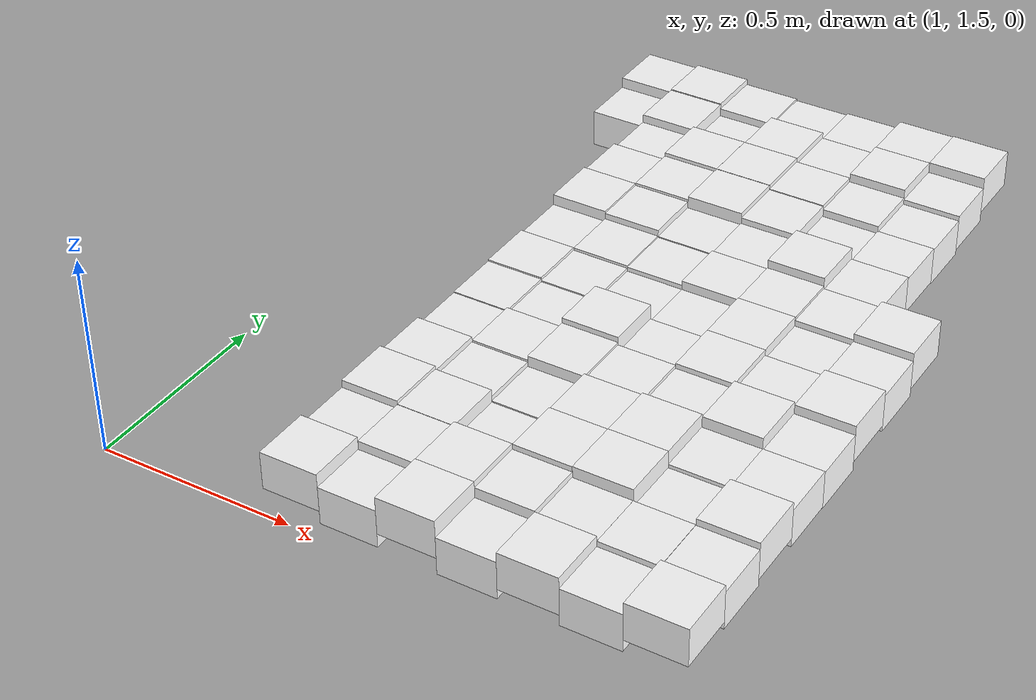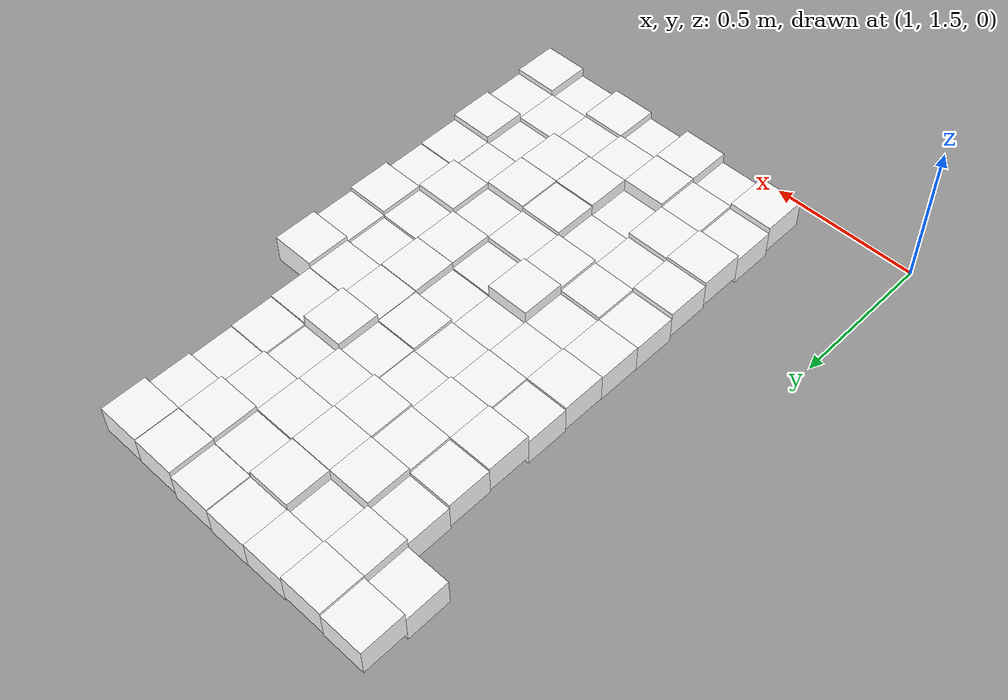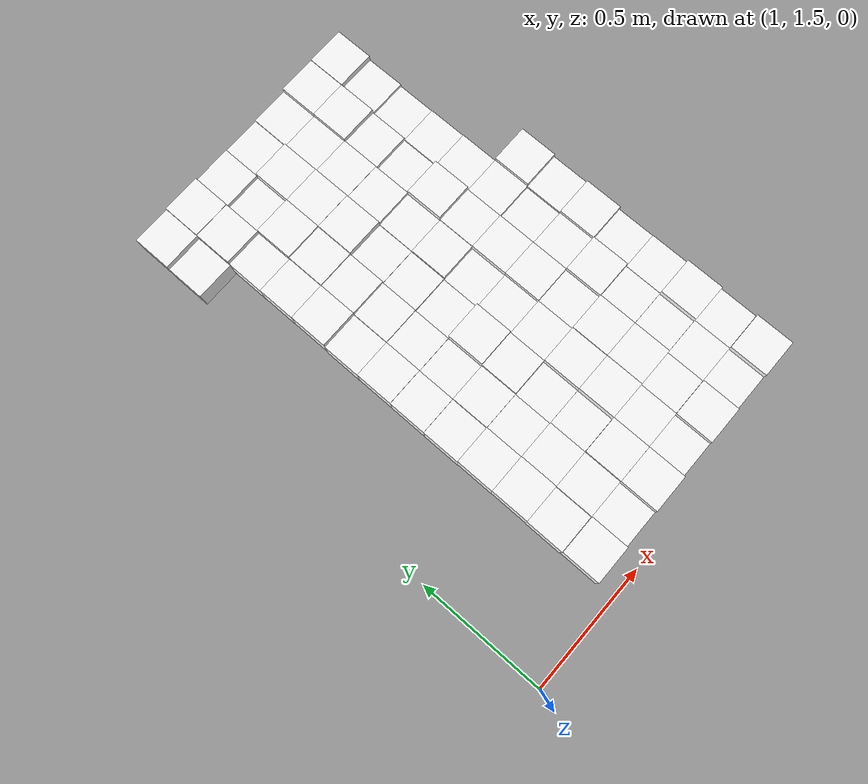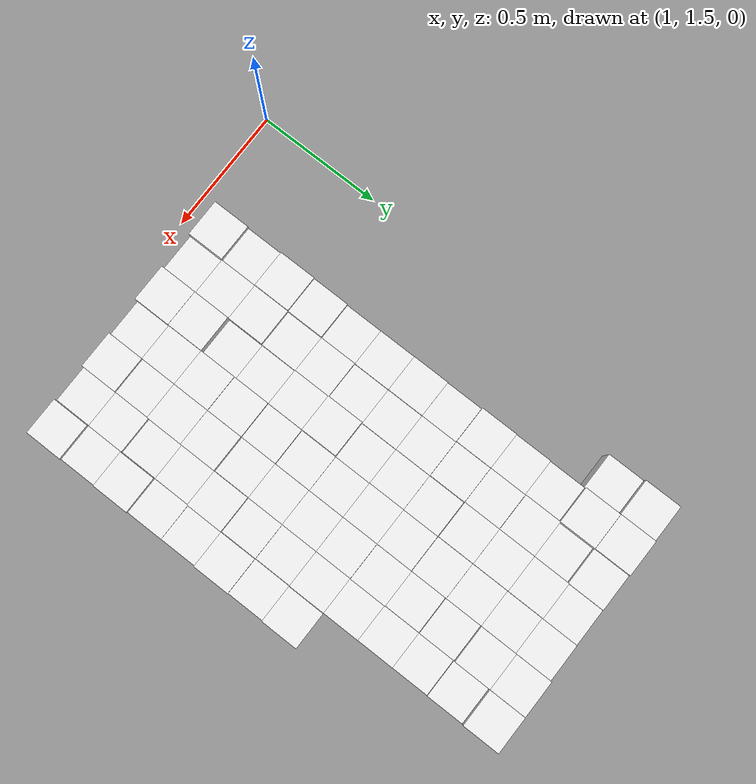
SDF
<sdf version="1.7">
 <world name="default">
  <include><uri>model://sun</uri></include>
  <model name="static_environment">
   <static>true</static>
   <link name="region_473">
    <pose>1.4499999999999997 1.65 0.04442237636148465 0.0 0.0 0.0</pose>
    <collision name="region_473_collision">
     <geometry><box><size>0.15 0.15 0.1</size></box></geometry>
     <surface><friction><ode><mu>1.0</mu><mu2>1.0</mu2></ode></friction></surface>
    </collision>
    <visual name="region_473_visual">
     <geometry><box><size>0.15 0.15 0.1</size></box></geometry>
     <material><ambient>1.0 1.0 1.0 1.0</ambient><diffuse>1.0 1.0 1.0 1.0</diffuse></material>
    </visual>
   </link>
   <link name="region_474">
    <pose>1.5999999999999996 1.65 0.010425024423009006 0.0 0.0 0.0</pose>
    <collision name="region_474_collision">
     <geometry><box><size>0.15 0.15 0.1</size></box></geometry>
     <surface><friction><ode><mu>1.0</mu><mu2>1.0</mu2></ode></friction></surface>
    </collision>
    <visual name="region_474_visual">
     <geometry><box><size>0.15 0.15 0.1</size></box></geometry>
     <material><ambient>1.0 1.0 1.0 1.0</ambient><diffuse>1.0 1.0 1.0 1.0</diffuse></material>
    </visual>
   </link>
   <link name="region_475">
    <pose>1.7499999999999996 1.65 0.047229073107816245 0.0 0.0 0.0</pose>
    <collision name="region_475_collision">
     <geometry><box><size>0.15 0.15 0.1</size></box></geometry>
     <surface><friction><ode><mu>1.0</mu><mu2>1.0</mu2></ode></friction></surface>
    </collision>
    <visual name="region_475_visual">
     <geometry><box><size>0.15 0.15 0.1</size></box></geometry>
     <material><ambient>1.0 1.0 1.0 1.0</ambient><diffuse>1.0 1.0 1.0 1.0</diffuse></material>
    </visual>
   </link>
   <link name="region_476">
    <pose>1.8999999999999995 1.65 0.0036735021971132766 0.0 0.0 0.0</pose>
    <collision name="region_476_collision">
     <geometry><box><size>0.15 0.15 0.1</size></box></geometry>
     <surface><friction><ode><mu>1.0</mu><mu2>1.0</mu2></ode></friction></surface>
    </collision>
    <visual name="region_476_visual">
     <geometry><box><size>0.15 0.15 0.1</size></box></geometry>
     <material><ambient>1.0 1.0 1.0 1.0</ambient><diffuse>1.0 1.0 1.0 1.0</diffuse></material>
    </visual>
   </link>
   <link name="region_477">
    <pose>2.05 1.65 0.029757622831804525 0.0 0.0 0.0</pose>
    <collision name="region_477_collision">
     <geometry><box><size>0.15 0.15 0.1</size></box></geometry>
     <surface><friction><ode><mu>1.0</mu><mu2>1.0</mu2></ode></friction></surface>
    </collision>
    <visual name="region_477_visual">
     <geometry><box><size>0.15 0.15 0.1</size></box></geometry>
     <material><ambient>1.0 1.0 1.0 1.0</ambient><diffuse>1.0 1.0 1.0 1.0</diffuse></material>
    </visual>
   </link>
   <link name="region_478">
    <pose>2.2 1.65 0.0015575535425883193 0.0 0.0 0.0</pose>
    <collision name="region_478_collision">
     <geometry><box><size>0.15 0.15 0.1</size></box></geometry>
     <surface><friction><ode><mu>1.0</mu><mu2>1.0</mu2></ode></friction></surface>
    </collision>
    <visual name="region_478_visual">
     <geometry><box><size>0.15 0.15 0.1</size></box></geometry>
     <material><ambient>1.0 1.0 1.0 1.0</ambient><diffuse>1.0 1.0 1.0 1.0</diffuse></material>
    </visual>
   </link>
   <link name="region_479">
    <pose>2.3500000000000005 1.65 0.03326287162653946 0.0 0.0 0.0</pose>
    <collision name="region_479_collision">
     <geometry><box><size>0.15 0.15 0.1</size></box></geometry>
     <surface><friction><ode><mu>1.0</mu><mu2>1.0</mu2></ode></friction></surface>
    </collision>
    <visual name="region_479_visual">
     <geometry><box><size>0.15 0.15 0.1</size></box></geometry>
     <material><ambient>1.0 1.0 1.0 1.0</ambient><diffuse>1.0 1.0 1.0 1.0</diffuse></material>
    </visual>
   </link>
   <link name="region_483">
    <pose>1.4499999999999997 1.7999999999999998 0.022281352670531288 0.0 0.0 0.0</pose>
    <collision name="region_483_collision">
     <geometry><box><size>0.15 0.15 0.1</size></box></geometry>
     <surface><friction><ode><mu>1.0</mu><mu2>1.0</mu2></ode></friction></surface>
    </collision>
    <visual name="region_483_visual">
     <geometry><box><size>0.15 0.15 0.1</size></box></geometry>
     <material><ambient>1.0 1.0 1.0 1.0</ambient><diffuse>1.0 1.0 1.0 1.0</diffuse></material>
    </visual>
   </link>
   <link name="region_484">
    <pose>1.5999999999999996 1.7999999999999998 0.03349788162178775 0.0 0.0 0.0</pose>
    <collision name="region_484_collision">
     <geometry><box><size>0.15 0.15 0.1</size></box></geometry>
     <surface><friction><ode><mu>1.0</mu><mu2>1.0</mu2></ode></friction></surface>
    </collision>
    <visual name="region_484_visual">
     <geometry><box><size>0.15 0.15 0.1</size></box></geometry>
     <material><ambient>1.0 1.0 1.0 1.0</ambient><diffuse>1.0 1.0 1.0 1.0</diffuse></material>
    </visual>
   </link>
   <link name="region_485">
    <pose>1.7499999999999996 1.7999999999999998 0.04621653498159958 0.0 0.0 0.0</pose>
    <collision name="region_485_collision">
     <geometry><box><size>0.15 0.15 0.1</size></box></geometry>
     <surface><friction><ode><mu>1.0</mu><mu2>1.0</mu2></ode></friction></surface>
    </collision>
    <visual name="region_485_visual">
     <geometry><box><size>0.15 0.15 0.1</size></box></geometry>
     <material><ambient>1.0 1.0 1.0 1.0</ambient><diffuse>1.0 1.0 1.0 1.0</diffuse></material>
    </visual>
   </link>
   <link name="region_486">
    <pose>1.8999999999999995 1.7999999999999998 0.030971173338387333 0.0 0.0 0.0</pose>
    <collision name="region_486_collision">
     <geometry><box><size>0.15 0.15 0.1</size></box></geometry>
     <surface><friction><ode><mu>1.0</mu><mu2>1.0</mu2></ode></friction></surface>
    </collision>
    <visual name="region_486_visual">
     <geometry><box><size>0.15 0.15 0.1</size></box></geometry>
     <material><ambient>1.0 1.0 1.0 1.0</ambient><diffuse>1.0 1.0 1.0 1.0</diffuse></material>
    </visual>
   </link>
   <link name="region_487">
    <pose>2.05 1.7999999999999998 0.016129286635440693 0.0 0.0 0.0</pose>
    <collision name="region_487_collision">
     <geometry><box><size>0.15 0.15 0.1</size></box></geometry>
     <surface><friction><ode><mu>1.0</mu><mu2>1.0</mu2></ode></friction></surface>
    </collision>
    <visual name="region_487_visual">
     <geometry><box><size>0.15 0.15 0.1</size></box></geometry>
     <material><ambient>1.0 1.0 1.0 1.0</ambient><diffuse>1.0 1.0 1.0 1.0</diffuse></material>
    </visual>
   </link>
   <link name="region_488">
    <pose>2.2 1.7999999999999998 0.015973815546679062 0.0 0.0 0.0</pose>
    <collision name="region_488_collision">
     <geometry><box><size>0.15 0.15 0.1</size></box></geometry>
     <surface><friction><ode><mu>1.0</mu><mu2>1.0</mu2></ode></friction></surface>
    </collision>
    <visual name="region_488_visual">
     <geometry><box><size>0.15 0.15 0.1</size></box></geometry>
     <material><ambient>1.0 1.0 1.0 1.0</ambient><diffuse>1.0 1.0 1.0 1.0</diffuse></material>
    </visual>
   </link>
   <link name="region_489">
    <pose>2.3500000000000005 1.7999999999999998 0.014572834250332645 0.0 0.0 0.0</pose>
    <collision name="region_489_collision">
     <geometry><box><size>0.15 0.15 0.1</size></box></geometry>
     <surface><friction><ode><mu>1.0</mu><mu2>1.0</mu2></ode></friction></surface>
    </collision>
    <visual name="region_489_visual">
     <geometry><box><size>0.15 0.15 0.1</size></box></geometry>
     <material><ambient>1.0 1.0 1.0 1.0</ambient><diffuse>1.0 1.0 1.0 1.0</diffuse></material>
    </visual>
   </link>
   <link name="region_493">
    <pose>1.4499999999999997 1.9499999999999997 0.042859527941597184 0.0 0.0 0.0</pose>
    <collision name="region_493_collision">
     <geometry><box><size>0.15 0.15 0.1</size></box></geometry>
     <surface><friction><ode><mu>1.0</mu><mu2>1.0</mu2></ode></friction></surface>
    </collision>
    <visual name="region_493_visual">
     <geometry><box><size>0.15 0.15 0.1</size></box></geometry>
     <material><ambient>1.0 1.0 1.0 1.0</ambient><diffuse>1.0 1.0 1.0 1.0</diffuse></material>
    </visual>
   </link>
   <link name="region_494">
    <pose>1.5999999999999996 1.9499999999999997 0.034446383301622883 0.0 0.0 0.0</pose>
    <collision name="region_494_collision">
     <geometry><box><size>0.15 0.15 0.1</size></box></geometry>
     <surface><friction><ode><mu>1.0</mu><mu2>1.0</mu2></ode></friction></surface>
    </collision>
    <visual name="region_494_visual">
     <geometry><box><size>0.15 0.15 0.1</size></box></geometry>
     <material><ambient>1.0 1.0 1.0 1.0</ambient><diffuse>1.0 1.0 1.0 1.0</diffuse></material>
    </visual>
   </link>
   <link name="region_495">
    <pose>1.7499999999999996 1.9499999999999997 0.00016439843761698048 0.0 0.0 0.0</pose>
    <collision name="region_495_collision">
     <geometry><box><size>0.15 0.15 0.1</size></box></geometry>
     <surface><friction><ode><mu>1.0</mu><mu2>1.0</mu2></ode></friction></surface>
    </collision>
    <visual name="region_495_visual">
     <geometry><box><size>0.15 0.15 0.1</size></box></geometry>
     <material><ambient>1.0 1.0 1.0 1.0</ambient><diffuse>1.0 1.0 1.0 1.0</diffuse></material>
    </visual>
   </link>
   <link name="region_496">
    <pose>1.8999999999999995 1.9499999999999997 0.045005174982849123 0.0 0.0 0.0</pose>
    <collision name="region_496_collision">
     <geometry><box><size>0.15 0.15 0.1</size></box></geometry>
     <surface><friction><ode><mu>1.0</mu><mu2>1.0</mu2></ode></friction></surface>
    </collision>
    <visual name="region_496_visual">
     <geometry><box><size>0.15 0.15 0.1</size></box></geometry>
     <material><ambient>1.0 1.0 1.0 1.0</ambient><diffuse>1.0 1.0 1.0 1.0</diffuse></material>
    </visual>
   </link>
   <link name="region_497">
    <pose>2.05 1.9499999999999997 0.045993243548116174 0.0 0.0 0.0</pose>
    <collision name="region_497_collision">
     <geometry><box><size>0.15 0.15 0.1</size></box></geometry>
     <surface><friction><ode><mu>1.0</mu><mu2>1.0</mu2></ode></friction></surface>
    </collision>
    <visual name="region_497_visual">
     <geometry><box><size>0.15 0.15 0.1</size></box></geometry>
     <material><ambient>1.0 1.0 1.0 1.0</ambient><diffuse>1.0 1.0 1.0 1.0</diffuse></material>
    </visual>
   </link>
   <link name="region_498">
    <pose>2.2 1.9499999999999997 0.0002954677934242145 0.0 0.0 0.0</pose>
    <collision name="region_498_collision">
     <geometry><box><size>0.15 0.15 0.1</size></box></geometry>
     <surface><friction><ode><mu>1.0</mu><mu2>1.0</mu2></ode></friction></surface>
    </collision>
    <visual name="region_498_visual">
     <geometry><box><size>0.15 0.15 0.1</size></box></geometry>
     <material><ambient>1.0 1.0 1.0 1.0</ambient><diffuse>1.0 1.0 1.0 1.0</diffuse></material>
    </visual>
   </link>
   <link name="region_499">
    <pose>2.3500000000000005 1.9499999999999997 0.03214630742179228 0.0 0.0 0.0</pose>
    <collision name="region_499_collision">
     <geometry><box><size>0.15 0.15 0.1</size></box></geometry>
     <surface><friction><ode><mu>1.0</mu><mu2>1.0</mu2></ode></friction></surface>
    </collision>
    <visual name="region_499_visual">
     <geometry><box><size>0.15 0.15 0.1</size></box></geometry>
     <material><ambient>1.0 1.0 1.0 1.0</ambient><diffuse>1.0 1.0 1.0 1.0</diffuse></material>
    </visual>
   </link>
   <link name="region_503">
    <pose>1.4499999999999997 2.0999999999999996 0.02998095941986689 0.0 0.0 0.0</pose>
    <collision name="region_503_collision">
     <geometry><box><size>0.15 0.15 0.1</size></box></geometry>
     <surface><friction><ode><mu>1.0</mu><mu2>1.0</mu2></ode></friction></surface>
    </collision>
    <visual name="region_503_visual">
     <geometry><box><size>0.15 0.15 0.1</size></box></geometry>
     <material><ambient>1.0 1.0 1.0 1.0</ambient><diffuse>1.0 1.0 1.0 1.0</diffuse></material>
    </visual>
   </link>
   <link name="region_504">
    <pose>1.5999999999999996 2.0999999999999996 0.01561419984216258 0.0 0.0 0.0</pose>
    <collision name="region_504_collision">
     <geometry><box><size>0.15 0.15 0.1</size></box></geometry>
     <surface><friction><ode><mu>1.0</mu><mu2>1.0</mu2></ode></friction></surface>
    </collision>
    <visual name="region_504_visual">
     <geometry><box><size>0.15 0.15 0.1</size></box></geometry>
     <material><ambient>1.0 1.0 1.0 1.0</ambient><diffuse>1.0 1.0 1.0 1.0</diffuse></material>
    </visual>
   </link>
   <link name="region_505">
    <pose>1.7499999999999996 2.0999999999999996 0.003493683738154402 0.0 0.0 0.0</pose>
    <collision name="region_505_collision">
     <geometry><box><size>0.15 0.15 0.1</size></box></geometry>
     <surface><friction><ode><mu>1.0</mu><mu2>1.0</mu2></ode></friction></surface>
    </collision>
    <visual name="region_505_visual">
     <geometry><box><size>0.15 0.15 0.1</size></box></geometry>
     <material><ambient>1.0 1.0 1.0 1.0</ambient><diffuse>1.0 1.0 1.0 1.0</diffuse></material>
    </visual>
   </link>
   <link name="region_506">
    <pose>1.8999999999999995 2.0999999999999996 0.04003671171077638 0.0 0.0 0.0</pose>
    <collision name="region_506_collision">
     <geometry><box><size>0.15 0.15 0.1</size></box></geometry>
     <surface><friction><ode><mu>1.0</mu><mu2>1.0</mu2></ode></friction></surface>
    </collision>
    <visual name="region_506_visual">
     <geometry><box><size>0.15 0.15 0.1</size></box></geometry>
     <material><ambient>1.0 1.0 1.0 1.0</ambient><diffuse>1.0 1.0 1.0 1.0</diffuse></material>
    </visual>
   </link>
   <link name="region_507">
    <pose>2.05 2.0999999999999996 0.04557170250666596 0.0 0.0 0.0</pose>
    <collision name="region_507_collision">
     <geometry><box><size>0.15 0.15 0.1</size></box></geometry>
     <surface><friction><ode><mu>1.0</mu><mu2>1.0</mu2></ode></friction></surface>
    </collision>
    <visual name="region_507_visual">
     <geometry><box><size>0.15 0.15 0.1</size></box></geometry>
     <material><ambient>1.0 1.0 1.0 1.0</ambient><diffuse>1.0 1.0 1.0 1.0</diffuse></material>
    </visual>
   </link>
   <link name="region_508">
    <pose>2.2 2.0999999999999996 0.009733731452126854 0.0 0.0 0.0</pose>
    <collision name="region_508_collision">
     <geometry><box><size>0.15 0.15 0.1</size></box></geometry>
     <surface><friction><ode><mu>1.0</mu><mu2>1.0</mu2></ode></friction></surface>
    </collision>
    <visual name="region_508_visual">
     <geometry><box><size>0.15 0.15 0.1</size></box></geometry>
     <material><ambient>1.0 1.0 1.0 1.0</ambient><diffuse>1.0 1.0 1.0 1.0</diffuse></material>
    </visual>
   </link>
   <link name="region_509">
    <pose>2.3500000000000005 2.0999999999999996 0.010530381942644197 0.0 0.0 0.0</pose>
    <collision name="region_509_collision">
     <geometry><box><size>0.15 0.15 0.1</size></box></geometry>
     <surface><friction><ode><mu>1.0</mu><mu2>1.0</mu2></ode></friction></surface>
    </collision>
    <visual name="region_509_visual">
     <geometry><box><size>0.15 0.15 0.1</size></box></geometry>
     <material><ambient>1.0 1.0 1.0 1.0</ambient><diffuse>1.0 1.0 1.0 1.0</diffuse></material>
    </visual>
   </link>
   <link name="region_513">
    <pose>1.4499999999999997 2.2499999999999996 0.010107717168503628 0.0 0.0 0.0</pose>
    <collision name="region_513_collision">
     <geometry><box><size>0.15 0.15 0.1</size></box></geometry>
     <surface><friction><ode><mu>1.0</mu><mu2>1.0</mu2></ode></friction></surface>
    </collision>
    <visual name="region_513_visual">
     <geometry><box><size>0.15 0.15 0.1</size></box></geometry>
     <material><ambient>1.0 1.0 1.0 1.0</ambient><diffuse>1.0 1.0 1.0 1.0</diffuse></material>
    </visual>
   </link>
   <link name="region_514">
    <pose>1.5999999999999996 2.2499999999999996 0.020950741374187527 0.0 0.0 0.0</pose>
    <collision name="region_514_collision">
     <geometry><box><size>0.15 0.15 0.1</size></box></geometry>
     <surface><friction><ode><mu>1.0</mu><mu2>1.0</mu2></ode></friction></surface>
    </collision>
    <visual name="region_514_visual">
     <geometry><box><size>0.15 0.15 0.1</size></box></geometry>
     <material><ambient>1.0 1.0 1.0 1.0</ambient><diffuse>1.0 1.0 1.0 1.0</diffuse></material>
    </visual>
   </link>
   <link name="region_515">
    <pose>1.7499999999999996 2.2499999999999996 0.032397958666963066 0.0 0.0 0.0</pose>
    <collision name="region_515_collision">
     <geometry><box><size>0.15 0.15 0.1</size></box></geometry>
     <surface><friction><ode><mu>1.0</mu><mu2>1.0</mu2></ode></friction></surface>
    </collision>
    <visual name="region_515_visual">
     <geometry><box><size>0.15 0.15 0.1</size></box></geometry>
     <material><ambient>1.0 1.0 1.0 1.0</ambient><diffuse>1.0 1.0 1.0 1.0</diffuse></material>
    </visual>
   </link>
   <link name="region_516">
    <pose>1.8999999999999995 2.2499999999999996 0.025582147639666555 0.0 0.0 0.0</pose>
    <collision name="region_516_collision">
     <geometry><box><size>0.15 0.15 0.1</size></box></geometry>
     <surface><friction><ode><mu>1.0</mu><mu2>1.0</mu2></ode></friction></surface>
    </collision>
    <visual name="region_516_visual">
     <geometry><box><size>0.15 0.15 0.1</size></box></geometry>
     <material><ambient>1.0 1.0 1.0 1.0</ambient><diffuse>1.0 1.0 1.0 1.0</diffuse></material>
    </visual>
   </link>
   <link name="region_517">
    <pose>2.05 2.2499999999999996 0.016691624275730156 0.0 0.0 0.0</pose>
    <collision name="region_517_collision">
     <geometry><box><size>0.15 0.15 0.1</size></box></geometry>
     <surface><friction><ode><mu>1.0</mu><mu2>1.0</mu2></ode></friction></surface>
    </collision>
    <visual name="region_517_visual">
     <geometry><box><size>0.15 0.15 0.1</size></box></geometry>
     <material><ambient>1.0 1.0 1.0 1.0</ambient><diffuse>1.0 1.0 1.0 1.0</diffuse></material>
    </visual>
   </link>
   <link name="region_518">
    <pose>2.2 2.2499999999999996 0.03892367169296723 0.0 0.0 0.0</pose>
    <collision name="region_518_collision">
     <geometry><box><size>0.15 0.15 0.1</size></box></geometry>
     <surface><friction><ode><mu>1.0</mu><mu2>1.0</mu2></ode></friction></surface>
    </collision>
    <visual name="region_518_visual">
     <geometry><box><size>0.15 0.15 0.1</size></box></geometry>
     <material><ambient>1.0 1.0 1.0 1.0</ambient><diffuse>1.0 1.0 1.0 1.0</diffuse></material>
    </visual>
   </link>
   <link name="region_519">
    <pose>2.3500000000000005 2.2499999999999996 0.00677175672838054 0.0 0.0 0.0</pose>
    <collision name="region_519_collision">
     <geometry><box><size>0.15 0.15 0.1</size></box></geometry>
     <surface><friction><ode><mu>1.0</mu><mu2>1.0</mu2></ode></friction></surface>
    </collision>
    <visual name="region_519_visual">
     <geometry><box><size>0.15 0.15 0.1</size></box></geometry>
     <material><ambient>1.0 1.0 1.0 1.0</ambient><diffuse>1.0 1.0 1.0 1.0</diffuse></material>
    </visual>
   </link>
   <link name="region_523">
    <pose>1.4499999999999997 2.3999999999999995 0.01269040969638447 0.0 0.0 0.0</pose>
    <collision name="region_523_collision">
     <geometry><box><size>0.15 0.15 0.1</size></box></geometry>
     <surface><friction><ode><mu>1.0</mu><mu2>1.0</mu2></ode></friction></surface>
    </collision>
    <visual name="region_523_visual">
     <geometry><box><size>0.15 0.15 0.1</size></box></geometry>
     <material><ambient>1.0 1.0 1.0 1.0</ambient><diffuse>1.0 1.0 1.0 1.0</diffuse></material>
    </visual>
   </link>
   <link name="region_524">
    <pose>1.5999999999999996 2.3999999999999995 0.005474271066575942 0.0 0.0 0.0</pose>
    <collision name="region_524_collision">
     <geometry><box><size>0.15 0.15 0.1</size></box></geometry>
     <surface><friction><ode><mu>1.0</mu><mu2>1.0</mu2></ode></friction></surface>
    </collision>
    <visual name="region_524_visual">
     <geometry><box><size>0.15 0.15 0.1</size></box></geometry>
     <material><ambient>1.0 1.0 1.0 1.0</ambient><diffuse>1.0 1.0 1.0 1.0</diffuse></material>
    </visual>
   </link>
   <link name="region_525">
    <pose>1.7499999999999996 2.3999999999999995 0.04653380071909432 0.0 0.0 0.0</pose>
    <collision name="region_525_collision">
     <geometry><box><size>0.15 0.15 0.1</size></box></geometry>
     <surface><friction><ode><mu>1.0</mu><mu2>1.0</mu2></ode></friction></surface>
    </collision>
    <visual name="region_525_visual">
     <geometry><box><size>0.15 0.15 0.1</size></box></geometry>
     <material><ambient>1.0 1.0 1.0 1.0</ambient><diffuse>1.0 1.0 1.0 1.0</diffuse></material>
    </visual>
   </link>
   <link name="region_526">
    <pose>1.8999999999999995 2.3999999999999995 0.00631936418872987 0.0 0.0 0.0</pose>
    <collision name="region_526_collision">
     <geometry><box><size>0.15 0.15 0.1</size></box></geometry>
     <surface><friction><ode><mu>1.0</mu><mu2>1.0</mu2></ode></friction></surface>
    </collision>
    <visual name="region_526_visual">
     <geometry><box><size>0.15 0.15 0.1</size></box></geometry>
     <material><ambient>1.0 1.0 1.0 1.0</ambient><diffuse>1.0 1.0 1.0 1.0</diffuse></material>
    </visual>
   </link>
   <link name="region_527">
    <pose>2.05 2.3999999999999995 0.03025026951817818 0.0 0.0 0.0</pose>
    <collision name="region_527_collision">
     <geometry><box><size>0.15 0.15 0.1</size></box></geometry>
     <surface><friction><ode><mu>1.0</mu><mu2>1.0</mu2></ode></friction></surface>
    </collision>
    <visual name="region_527_visual">
     <geometry><box><size>0.15 0.15 0.1</size></box></geometry>
     <material><ambient>1.0 1.0 1.0 1.0</ambient><diffuse>1.0 1.0 1.0 1.0</diffuse></material>
    </visual>
   </link>
   <link name="region_528">
    <pose>2.2 2.3999999999999995 0.014506096829391357 0.0 0.0 0.0</pose>
    <collision name="region_528_collision">
     <geometry><box><size>0.15 0.15 0.1</size></box></geometry>
     <surface><friction><ode><mu>1.0</mu><mu2>1.0</mu2></ode></friction></surface>
    </collision>
    <visual name="region_528_visual">
     <geometry><box><size>0.15 0.15 0.1</size></box></geometry>
     <material><ambient>1.0 1.0 1.0 1.0</ambient><diffuse>1.0 1.0 1.0 1.0</diffuse></material>
    </visual>
   </link>
   <link name="region_529">
    <pose>2.3500000000000005 2.3999999999999995 0.03132646959612852 0.0 0.0 0.0</pose>
    <collision name="region_529_collision">
     <geometry><box><size>0.15 0.15 0.1</size></box></geometry>
     <surface><friction><ode><mu>1.0</mu><mu2>1.0</mu2></ode></friction></surface>
    </collision>
    <visual name="region_529_visual">
     <geometry><box><size>0.15 0.15 0.1</size></box></geometry>
     <material><ambient>1.0 1.0 1.0 1.0</ambient><diffuse>1.0 1.0 1.0 1.0</diffuse></material>
    </visual>
   </link>
   <link name="region_533">
    <pose>1.4499999999999997 2.5499999999999994 0.016736203873838628 0.0 0.0 0.0</pose>
    <collision name="region_533_collision">
     <geometry><box><size>0.15 0.15 0.1</size></box></geometry>
     <surface><friction><ode><mu>1.0</mu><mu2>1.0</mu2></ode></friction></surface>
    </collision>
    <visual name="region_533_visual">
     <geometry><box><size>0.15 0.15 0.1</size></box></geometry>
     <material><ambient>1.0 1.0 1.0 1.0</ambient><diffuse>1.0 1.0 1.0 1.0</diffuse></material>
    </visual>
   </link>
   <link name="region_534">
    <pose>1.5999999999999996 2.5499999999999994 0.00887531836083677 0.0 0.0 0.0</pose>
    <collision name="region_534_collision">
     <geometry><box><size>0.15 0.15 0.1</size></box></geometry>
     <surface><friction><ode><mu>1.0</mu><mu2>1.0</mu2></ode></friction></surface>
    </collision>
    <visual name="region_534_visual">
     <geometry><box><size>0.15 0.15 0.1</size></box></geometry>
     <material><ambient>1.0 1.0 1.0 1.0</ambient><diffuse>1.0 1.0 1.0 1.0</diffuse></material>
    </visual>
   </link>
   <link name="region_535">
    <pose>1.7499999999999996 2.5499999999999994 0.00040016698911405913 0.0 0.0 0.0</pose>
    <collision name="region_535_collision">
     <geometry><box><size>0.15 0.15 0.1</size></box></geometry>
     <surface><friction><ode><mu>1.0</mu><mu2>1.0</mu2></ode></friction></surface>
    </collision>
    <visual name="region_535_visual">
     <geometry><box><size>0.15 0.15 0.1</size></box></geometry>
     <material><ambient>1.0 1.0 1.0 1.0</ambient><diffuse>1.0 1.0 1.0 1.0</diffuse></material>
    </visual>
   </link>
   <link name="region_536">
    <pose>1.8999999999999995 2.5499999999999994 0.0005219201047360567 0.0 0.0 0.0</pose>
    <collision name="region_536_collision">
     <geometry><box><size>0.15 0.15 0.1</size></box></geometry>
     <surface><friction><ode><mu>1.0</mu><mu2>1.0</mu2></ode></friction></surface>
    </collision>
    <visual name="region_536_visual">
     <geometry><box><size>0.15 0.15 0.1</size></box></geometry>
     <material><ambient>1.0 1.0 1.0 1.0</ambient><diffuse>1.0 1.0 1.0 1.0</diffuse></material>
    </visual>
   </link>
   <link name="region_537">
    <pose>2.05 2.5499999999999994 0.029872940231956163 0.0 0.0 0.0</pose>
    <collision name="region_537_collision">
     <geometry><box><size>0.15 0.15 0.1</size></box></geometry>
     <surface><friction><ode><mu>1.0</mu><mu2>1.0</mu2></ode></friction></surface>
    </collision>
    <visual name="region_537_visual">
     <geometry><box><size>0.15 0.15 0.1</size></box></geometry>
     <material><ambient>1.0 1.0 1.0 1.0</ambient><diffuse>1.0 1.0 1.0 1.0</diffuse></material>
    </visual>
   </link>
   <link name="region_538">
    <pose>2.2 2.5499999999999994 0.004231926017606069 0.0 0.0 0.0</pose>
    <collision name="region_538_collision">
     <geometry><box><size>0.15 0.15 0.1</size></box></geometry>
     <surface><friction><ode><mu>1.0</mu><mu2>1.0</mu2></ode></friction></surface>
    </collision>
    <visual name="region_538_visual">
     <geometry><box><size>0.15 0.15 0.1</size></box></geometry>
     <material><ambient>1.0 1.0 1.0 1.0</ambient><diffuse>1.0 1.0 1.0 1.0</diffuse></material>
    </visual>
   </link>
   <link name="region_539">
    <pose>2.3500000000000005 2.5499999999999994 0.01578341184643328 0.0 0.0 0.0</pose>
    <collision name="region_539_collision">
     <geometry><box><size>0.15 0.15 0.1</size></box></geometry>
     <surface><friction><ode><mu>1.0</mu><mu2>1.0</mu2></ode></friction></surface>
    </collision>
    <visual name="region_539_visual">
     <geometry><box><size>0.15 0.15 0.1</size></box></geometry>
     <material><ambient>1.0 1.0 1.0 1.0</ambient><diffuse>1.0 1.0 1.0 1.0</diffuse></material>
    </visual>
   </link>
   <link name="region_543">
    <pose>1.4499999999999997 2.6999999999999997 0.008494913046594277 0.0 0.0 0.0</pose>
    <collision name="region_543_collision">
     <geometry><box><size>0.15 0.15 0.1</size></box></geometry>
     <surface><friction><ode><mu>1.0</mu><mu2>1.0</mu2></ode></friction></surface>
    </collision>
    <visual name="region_543_visual">
     <geometry><box><size>0.15 0.15 0.1</size></box></geometry>
     <material><ambient>1.0 1.0 1.0 1.0</ambient><diffuse>1.0 1.0 1.0 1.0</diffuse></material>
    </visual>
   </link>
   <link name="region_544">
    <pose>1.5999999999999996 2.6999999999999997 0.015840395034452254 0.0 0.0 0.0</pose>
    <collision name="region_544_collision">
     <geometry><box><size>0.15 0.15 0.1</size></box></geometry>
     <surface><friction><ode><mu>1.0</mu><mu2>1.0</mu2></ode></friction></surface>
    </collision>
    <visual name="region_544_visual">
     <geometry><box><size>0.15 0.15 0.1</size></box></geometry>
     <material><ambient>1.0 1.0 1.0 1.0</ambient><diffuse>1.0 1.0 1.0 1.0</diffuse></material>
    </visual>
   </link>
   <link name="region_545">
    <pose>1.7499999999999996 2.6999999999999997 0.012089011785703136 0.0 0.0 0.0</pose>
    <collision name="region_545_collision">
     <geometry><box><size>0.15 0.15 0.1</size></box></geometry>
     <surface><friction><ode><mu>1.0</mu><mu2>1.0</mu2></ode></friction></surface>
    </collision>
    <visual name="region_545_visual">
     <geometry><box><size>0.15 0.15 0.1</size></box></geometry>
     <material><ambient>1.0 1.0 1.0 1.0</ambient><diffuse>1.0 1.0 1.0 1.0</diffuse></material>
    </visual>
   </link>
   <link name="region_546">
    <pose>1.8999999999999995 2.6999999999999997 0.024547748491249147 0.0 0.0 0.0</pose>
    <collision name="region_546_collision">
     <geometry><box><size>0.15 0.15 0.1</size></box></geometry>
     <surface><friction><ode><mu>1.0</mu><mu2>1.0</mu2></ode></friction></surface>
    </collision>
    <visual name="region_546_visual">
     <geometry><box><size>0.15 0.15 0.1</size></box></geometry>
     <material><ambient>1.0 1.0 1.0 1.0</ambient><diffuse>1.0 1.0 1.0 1.0</diffuse></material>
    </visual>
   </link>
   <link name="region_547">
    <pose>2.05 2.6999999999999997 0.02719717047842568 0.0 0.0 0.0</pose>
    <collision name="region_547_collision">
     <geometry><box><size>0.15 0.15 0.1</size></box></geometry>
     <surface><friction><ode><mu>1.0</mu><mu2>1.0</mu2></ode></friction></surface>
    </collision>
    <visual name="region_547_visual">
     <geometry><box><size>0.15 0.15 0.1</size></box></geometry>
     <material><ambient>1.0 1.0 1.0 1.0</ambient><diffuse>1.0 1.0 1.0 1.0</diffuse></material>
    </visual>
   </link>
   <link name="region_548">
    <pose>2.2 2.6999999999999997 0.020272719354250512 0.0 0.0 0.0</pose>
    <collision name="region_548_collision">
     <geometry><box><size>0.15 0.15 0.1</size></box></geometry>
     <surface><friction><ode><mu>1.0</mu><mu2>1.0</mu2></ode></friction></surface>
    </collision>
    <visual name="region_548_visual">
     <geometry><box><size>0.15 0.15 0.1</size></box></geometry>
     <material><ambient>1.0 1.0 1.0 1.0</ambient><diffuse>1.0 1.0 1.0 1.0</diffuse></material>
    </visual>
   </link>
   <link name="region_549">
    <pose>2.3500000000000005 2.6999999999999997 0.037120515658839684 0.0 0.0 0.0</pose>
    <collision name="region_549_collision">
     <geometry><box><size>0.15 0.15 0.1</size></box></geometry>
     <surface><friction><ode><mu>1.0</mu><mu2>1.0</mu2></ode></friction></surface>
    </collision>
    <visual name="region_549_visual">
     <geometry><box><size>0.15 0.15 0.1</size></box></geometry>
     <material><ambient>1.0 1.0 1.0 1.0</ambient><diffuse>1.0 1.0 1.0 1.0</diffuse></material>
    </visual>
   </link>
   <link name="region_553">
    <pose>1.4499999999999997 2.8499999999999996 0.037329189490287795 0.0 0.0 0.0</pose>
    <collision name="region_553_collision">
     <geometry><box><size>0.15 0.15 0.1</size></box></geometry>
     <surface><friction><ode><mu>1.0</mu><mu2>1.0</mu2></ode></friction></surface>
    </collision>
    <visual name="region_553_visual">
     <geometry><box><size>0.15 0.15 0.1</size></box></geometry>
     <material><ambient>1.0 1.0 1.0 1.0</ambient><diffuse>1.0 1.0 1.0 1.0</diffuse></material>
    </visual>
   </link>
   <link name="region_554">
    <pose>1.5999999999999996 2.8499999999999996 0.03207237978078083 0.0 0.0 0.0</pose>
    <collision name="region_554_collision">
     <geometry><box><size>0.15 0.15 0.1</size></box></geometry>
     <surface><friction><ode><mu>1.0</mu><mu2>1.0</mu2></ode></friction></surface>
    </collision>
    <visual name="region_554_visual">
     <geometry><box><size>0.15 0.15 0.1</size></box></geometry>
     <material><ambient>1.0 1.0 1.0 1.0</ambient><diffuse>1.0 1.0 1.0 1.0</diffuse></material>
    </visual>
   </link>
   <link name="region_555">
    <pose>1.7499999999999996 2.8499999999999996 0.01491155146158184 0.0 0.0 0.0</pose>
    <collision name="region_555_collision">
     <geometry><box><size>0.15 0.15 0.1</size></box></geometry>
     <surface><friction><ode><mu>1.0</mu><mu2>1.0</mu2></ode></friction></surface>
    </collision>
    <visual name="region_555_visual">
     <geometry><box><size>0.15 0.15 0.1</size></box></geometry>
     <material><ambient>1.0 1.0 1.0 1.0</ambient><diffuse>1.0 1.0 1.0 1.0</diffuse></material>
    </visual>
   </link>
   <link name="region_556">
    <pose>1.8999999999999995 2.8499999999999996 0.018791394765972996 0.0 0.0 0.0</pose>
    <collision name="region_556_collision">
     <geometry><box><size>0.15 0.15 0.1</size></box></geometry>
     <surface><friction><ode><mu>1.0</mu><mu2>1.0</mu2></ode></friction></surface>
    </collision>
    <visual name="region_556_visual">
     <geometry><box><size>0.15 0.15 0.1</size></box></geometry>
     <material><ambient>1.0 1.0 1.0 1.0</ambient><diffuse>1.0 1.0 1.0 1.0</diffuse></material>
    </visual>
   </link>
   <link name="region_557">
    <pose>2.05 2.8499999999999996 0.04943139325875737 0.0 0.0 0.0</pose>
    <collision name="region_557_collision">
     <geometry><box><size>0.15 0.15 0.1</size></box></geometry>
     <surface><friction><ode><mu>1.0</mu><mu2>1.0</mu2></ode></friction></surface>
    </collision>
    <visual name="region_557_visual">
     <geometry><box><size>0.15 0.15 0.1</size></box></geometry>
     <material><ambient>1.0 1.0 1.0 1.0</ambient><diffuse>1.0 1.0 1.0 1.0</diffuse></material>
    </visual>
   </link>
   <link name="region_558">
    <pose>2.2 2.8499999999999996 0.017229747013995905 0.0 0.0 0.0</pose>
    <collision name="region_558_collision">
     <geometry><box><size>0.15 0.15 0.1</size></box></geometry>
     <surface><friction><ode><mu>1.0</mu><mu2>1.0</mu2></ode></friction></surface>
    </collision>
    <visual name="region_558_visual">
     <geometry><box><size>0.15 0.15 0.1</size></box></geometry>
     <material><ambient>1.0 1.0 1.0 1.0</ambient><diffuse>1.0 1.0 1.0 1.0</diffuse></material>
    </visual>
   </link>
   <link name="region_563">
    <pose>1.4499999999999997 2.9999999999999996 0.028721639741353444 0.0 0.0 0.0</pose>
    <collision name="region_563_collision">
     <geometry><box><size>0.15 0.15 0.1</size></box></geometry>
     <surface><friction><ode><mu>1.0</mu><mu2>1.0</mu2></ode></friction></surface>
    </collision>
    <visual name="region_563_visual">
     <geometry><box><size>0.15 0.15 0.1</size></box></geometry>
     <material><ambient>1.0 1.0 1.0 1.0</ambient><diffuse>1.0 1.0 1.0 1.0</diffuse></material>
    </visual>
   </link>
   <link name="region_564">
    <pose>1.5999999999999996 2.9999999999999996 0.03888397260398108 0.0 0.0 0.0</pose>
    <collision name="region_564_collision">
     <geometry><box><size>0.15 0.15 0.1</size></box></geometry>
     <surface><friction><ode><mu>1.0</mu><mu2>1.0</mu2></ode></friction></surface>
    </collision>
    <visual name="region_564_visual">
     <geometry><box><size>0.15 0.15 0.1</size></box></geometry>
     <material><ambient>1.0 1.0 1.0 1.0</ambient><diffuse>1.0 1.0 1.0 1.0</diffuse></material>
    </visual>
   </link>
   <link name="region_565">
    <pose>1.7499999999999996 2.9999999999999996 0.047494103856887515 0.0 0.0 0.0</pose>
    <collision name="region_565_collision">
     <geometry><box><size>0.15 0.15 0.1</size></box></geometry>
     <surface><friction><ode><mu>1.0</mu><mu2>1.0</mu2></ode></friction></surface>
    </collision>
    <visual name="region_565_visual">
     <geometry><box><size>0.15 0.15 0.1</size></box></geometry>
     <material><ambient>1.0 1.0 1.0 1.0</ambient><diffuse>1.0 1.0 1.0 1.0</diffuse></material>
    </visual>
   </link>
   <link name="region_566">
    <pose>1.8999999999999995 2.9999999999999996 0.035149108655000566 0.0 0.0 0.0</pose>
    <collision name="region_566_collision">
     <geometry><box><size>0.15 0.15 0.1</size></box></geometry>
     <surface><friction><ode><mu>1.0</mu><mu2>1.0</mu2></ode></friction></surface>
    </collision>
    <visual name="region_566_visual">
     <geometry><box><size>0.15 0.15 0.1</size></box></geometry>
     <material><ambient>1.0 1.0 1.0 1.0</ambient><diffuse>1.0 1.0 1.0 1.0</diffuse></material>
    </visual>
   </link>
   <link name="region_567">
    <pose>2.05 2.9999999999999996 0.005810286672391235 0.0 0.0 0.0</pose>
    <collision name="region_567_collision">
     <geometry><box><size>0.15 0.15 0.1</size></box></geometry>
     <surface><friction><ode><mu>1.0</mu><mu2>1.0</mu2></ode></friction></surface>
    </collision>
    <visual name="region_567_visual">
     <geometry><box><size>0.15 0.15 0.1</size></box></geometry>
     <material><ambient>1.0 1.0 1.0 1.0</ambient><diffuse>1.0 1.0 1.0 1.0</diffuse></material>
    </visual>
   </link>
   <link name="region_568">
    <pose>2.2 2.9999999999999996 0.01233007390615455 0.0 0.0 0.0</pose>
    <collision name="region_568_collision">
     <geometry><box><size>0.15 0.15 0.1</size></box></geometry>
     <surface><friction><ode><mu>1.0</mu><mu2>1.0</mu2></ode></friction></surface>
    </collision>
    <visual name="region_568_visual">
     <geometry><box><size>0.15 0.15 0.1</size></box></geometry>
     <material><ambient>1.0 1.0 1.0 1.0</ambient><diffuse>1.0 1.0 1.0 1.0</diffuse></material>
    </visual>
   </link>
   <link name="region_573">
    <pose>1.4499999999999997 3.1499999999999995 0.016098379376536333 0.0 0.0 0.0</pose>
    <collision name="region_573_collision">
     <geometry><box><size>0.15 0.15 0.1</size></box></geometry>
     <surface><friction><ode><mu>1.0</mu><mu2>1.0</mu2></ode></friction></surface>
    </collision>
    <visual name="region_573_visual">
     <geometry><box><size>0.15 0.15 0.1</size></box></geometry>
     <material><ambient>1.0 1.0 1.0 1.0</ambient><diffuse>1.0 1.0 1.0 1.0</diffuse></material>
    </visual>
   </link>
   <link name="region_574">
    <pose>1.5999999999999996 3.1499999999999995 0.048566264696378904 0.0 0.0 0.0</pose>
    <collision name="region_574_collision">
     <geometry><box><size>0.15 0.15 0.1</size></box></geometry>
     <surface><friction><ode><mu>1.0</mu><mu2>1.0</mu2></ode></friction></surface>
    </collision>
    <visual name="region_574_visual">
     <geometry><box><size>0.15 0.15 0.1</size></box></geometry>
     <material><ambient>1.0 1.0 1.0 1.0</ambient><diffuse>1.0 1.0 1.0 1.0</diffuse></material>
    </visual>
   </link>
   <link name="region_575">
    <pose>1.7499999999999996 3.1499999999999995 0.04845911898057206 0.0 0.0 0.0</pose>
    <collision name="region_575_collision">
     <geometry><box><size>0.15 0.15 0.1</size></box></geometry>
     <surface><friction><ode><mu>1.0</mu><mu2>1.0</mu2></ode></friction></surface>
    </collision>
    <visual name="region_575_visual">
     <geometry><box><size>0.15 0.15 0.1</size></box></geometry>
     <material><ambient>1.0 1.0 1.0 1.0</ambient><diffuse>1.0 1.0 1.0 1.0</diffuse></material>
    </visual>
   </link>
   <link name="region_576">
    <pose>1.8999999999999995 3.1499999999999995 0.037170898411275695 0.0 0.0 0.0</pose>
    <collision name="region_576_collision">
     <geometry><box><size>0.15 0.15 0.1</size></box></geometry>
     <surface><friction><ode><mu>1.0</mu><mu2>1.0</mu2></ode></friction></surface>
    </collision>
    <visual name="region_576_visual">
     <geometry><box><size>0.15 0.15 0.1</size></box></geometry>
     <material><ambient>1.0 1.0 1.0 1.0</ambient><diffuse>1.0 1.0 1.0 1.0</diffuse></material>
    </visual>
   </link>
   <link name="region_577">
    <pose>2.05 3.1499999999999995 0.025884464751773417 0.0 0.0 0.0</pose>
    <collision name="region_577_collision">
     <geometry><box><size>0.15 0.15 0.1</size></box></geometry>
     <surface><friction><ode><mu>1.0</mu><mu2>1.0</mu2></ode></friction></surface>
    </collision>
    <visual name="region_577_visual">
     <geometry><box><size>0.15 0.15 0.1</size></box></geometry>
     <material><ambient>1.0 1.0 1.0 1.0</ambient><diffuse>1.0 1.0 1.0 1.0</diffuse></material>
    </visual>
   </link>
   <link name="region_578">
    <pose>2.2 3.1499999999999995 0.008223997805945555 0.0 0.0 0.0</pose>
    <collision name="region_578_collision">
     <geometry><box><size>0.15 0.15 0.1</size></box></geometry>
     <surface><friction><ode><mu>1.0</mu><mu2>1.0</mu2></ode></friction></surface>
    </collision>
    <visual name="region_578_visual">
     <geometry><box><size>0.15 0.15 0.1</size></box></geometry>
     <material><ambient>1.0 1.0 1.0 1.0</ambient><diffuse>1.0 1.0 1.0 1.0</diffuse></material>
    </visual>
   </link>
   <link name="region_582">
    <pose>1.2999999999999998 3.2999999999999994 0.002551930001253533 0.0 0.0 0.0</pose>
    <collision name="region_582_collision">
     <geometry><box><size>0.15 0.15 0.1</size></box></geometry>
     <surface><friction><ode><mu>1.0</mu><mu2>1.0</mu2></ode></friction></surface>
    </collision>
    <visual name="region_582_visual">
     <geometry><box><size>0.15 0.15 0.1</size></box></geometry>
     <material><ambient>1.0 1.0 1.0 1.0</ambient><diffuse>1.0 1.0 1.0 1.0</diffuse></material>
    </visual>
   </link>
   <link name="region_583">
    <pose>1.4499999999999997 3.2999999999999994 0.03874701077173645 0.0 0.0 0.0</pose>
    <collision name="region_583_collision">
     <geometry><box><size>0.15 0.15 0.1</size></box></geometry>
     <surface><friction><ode><mu>1.0</mu><mu2>1.0</mu2></ode></friction></surface>
    </collision>
    <visual name="region_583_visual">
     <geometry><box><size>0.15 0.15 0.1</size></box></geometry>
     <material><ambient>1.0 1.0 1.0 1.0</ambient><diffuse>1.0 1.0 1.0 1.0</diffuse></material>
    </visual>
   </link>
   <link name="region_584">
    <pose>1.5999999999999996 3.2999999999999994 0.0052947576211729635 0.0 0.0 0.0</pose>
    <collision name="region_584_collision">
     <geometry><box><size>0.15 0.15 0.1</size></box></geometry>
     <surface><friction><ode><mu>1.0</mu><mu2>1.0</mu2></ode></friction></surface>
    </collision>
    <visual name="region_584_visual">
     <geometry><box><size>0.15 0.15 0.1</size></box></geometry>
     <material><ambient>1.0 1.0 1.0 1.0</ambient><diffuse>1.0 1.0 1.0 1.0</diffuse></material>
    </visual>
   </link>
   <link name="region_585">
    <pose>1.7499999999999996 3.2999999999999994 0.04526979333148268 0.0 0.0 0.0</pose>
    <collision name="region_585_collision">
     <geometry><box><size>0.15 0.15 0.1</size></box></geometry>
     <surface><friction><ode><mu>1.0</mu><mu2>1.0</mu2></ode></friction></surface>
    </collision>
    <visual name="region_585_visual">
     <geometry><box><size>0.15 0.15 0.1</size></box></geometry>
     <material><ambient>1.0 1.0 1.0 1.0</ambient><diffuse>1.0 1.0 1.0 1.0</diffuse></material>
    </visual>
   </link>
   <link name="region_586">
    <pose>1.8999999999999995 3.2999999999999994 0.029394324235580135 0.0 0.0 0.0</pose>
    <collision name="region_586_collision">
     <geometry><box><size>0.15 0.15 0.1</size></box></geometry>
     <surface><friction><ode><mu>1.0</mu><mu2>1.0</mu2></ode></friction></surface>
    </collision>
    <visual name="region_586_visual">
     <geometry><box><size>0.15 0.15 0.1</size></box></geometry>
     <material><ambient>1.0 1.0 1.0 1.0</ambient><diffuse>1.0 1.0 1.0 1.0</diffuse></material>
    </visual>
   </link>
   <link name="region_587">
    <pose>2.05 3.2999999999999994 0.04940448788474594 0.0 0.0 0.0</pose>
    <collision name="region_587_collision">
     <geometry><box><size>0.15 0.15 0.1</size></box></geometry>
     <surface><friction><ode><mu>1.0</mu><mu2>1.0</mu2></ode></friction></surface>
    </collision>
    <visual name="region_587_visual">
     <geometry><box><size>0.15 0.15 0.1</size></box></geometry>
     <material><ambient>1.0 1.0 1.0 1.0</ambient><diffuse>1.0 1.0 1.0 1.0</diffuse></material>
    </visual>
   </link>
   <link name="region_588">
    <pose>2.2 3.2999999999999994 0.021433067825808894 0.0 0.0 0.0</pose>
    <collision name="region_588_collision">
     <geometry><box><size>0.15 0.15 0.1</size></box></geometry>
     <surface><friction><ode><mu>1.0</mu><mu2>1.0</mu2></ode></friction></surface>
    </collision>
    <visual name="region_588_visual">
     <geometry><box><size>0.15 0.15 0.1</size></box></geometry>
     <material><ambient>1.0 1.0 1.0 1.0</ambient><diffuse>1.0 1.0 1.0 1.0</diffuse></material>
    </visual>
   </link>
   <link name="region_592">
    <pose>1.2999999999999998 3.4499999999999993 0.03194565346310787 0.0 0.0 0.0</pose>
    <collision name="region_592_collision">
     <geometry><box><size>0.15 0.15 0.1</size></box></geometry>
     <surface><friction><ode><mu>1.0</mu><mu2>1.0</mu2></ode></friction></surface>
    </collision>
    <visual name="region_592_visual">
     <geometry><box><size>0.15 0.15 0.1</size></box></geometry>
     <material><ambient>1.0 1.0 1.0 1.0</ambient><diffuse>1.0 1.0 1.0 1.0</diffuse></material>
    </visual>
   </link>
   <link name="region_593">
    <pose>1.4499999999999997 3.4499999999999993 0.041339998758033784 0.0 0.0 0.0</pose>
    <collision name="region_593_collision">
     <geometry><box><size>0.15 0.15 0.1</size></box></geometry>
     <surface><friction><ode><mu>1.0</mu><mu2>1.0</mu2></ode></friction></surface>
    </collision>
    <visual name="region_593_visual">
     <geometry><box><size>0.15 0.15 0.1</size></box></geometry>
     <material><ambient>1.0 1.0 1.0 1.0</ambient><diffuse>1.0 1.0 1.0 1.0</diffuse></material>
    </visual>
   </link>
   <link name="region_594">
    <pose>1.5999999999999996 3.4499999999999993 0.026065262916021473 0.0 0.0 0.0</pose>
    <collision name="region_594_collision">
     <geometry><box><size>0.15 0.15 0.1</size></box></geometry>
     <surface><friction><ode><mu>1.0</mu><mu2>1.0</mu2></ode></friction></surface>
    </collision>
    <visual name="region_594_visual">
     <geometry><box><size>0.15 0.15 0.1</size></box></geometry>
     <material><ambient>1.0 1.0 1.0 1.0</ambient><diffuse>1.0 1.0 1.0 1.0</diffuse></material>
    </visual>
   </link>
   <link name="region_595">
    <pose>1.7499999999999996 3.4499999999999993 0.02122425694387764 0.0 0.0 0.0</pose>
    <collision name="region_595_collision">
     <geometry><box><size>0.15 0.15 0.1</size></box></geometry>
     <surface><friction><ode><mu>1.0</mu><mu2>1.0</mu2></ode></friction></surface>
    </collision>
    <visual name="region_595_visual">
     <geometry><box><size>0.15 0.15 0.1</size></box></geometry>
     <material><ambient>1.0 1.0 1.0 1.0</ambient><diffuse>1.0 1.0 1.0 1.0</diffuse></material>
    </visual>
   </link>
   <link name="region_596">
    <pose>1.8999999999999995 3.4499999999999993 0.02655015189021411 0.0 0.0 0.0</pose>
    <collision name="region_596_collision">
     <geometry><box><size>0.15 0.15 0.1</size></box></geometry>
     <surface><friction><ode><mu>1.0</mu><mu2>1.0</mu2></ode></friction></surface>
    </collision>
    <visual name="region_596_visual">
     <geometry><box><size>0.15 0.15 0.1</size></box></geometry>
     <material><ambient>1.0 1.0 1.0 1.0</ambient><diffuse>1.0 1.0 1.0 1.0</diffuse></material>
    </visual>
   </link>
   <link name="region_597">
    <pose>2.05 3.4499999999999993 0.047298906133503016 0.0 0.0 0.0</pose>
    <collision name="region_597_collision">
     <geometry><box><size>0.15 0.15 0.1</size></box></geometry>
     <surface><friction><ode><mu>1.0</mu><mu2>1.0</mu2></ode></friction></surface>
    </collision>
    <visual name="region_597_visual">
     <geometry><box><size>0.15 0.15 0.1</size></box></geometry>
     <material><ambient>1.0 1.0 1.0 1.0</ambient><diffuse>1.0 1.0 1.0 1.0</diffuse></material>
    </visual>
   </link>
   <link name="region_598">
    <pose>2.2 3.4499999999999993 0.049963683107212144 0.0 0.0 0.0</pose>
    <collision name="region_598_collision">
     <geometry><box><size>0.15 0.15 0.1</size></box></geometry>
     <surface><friction><ode><mu>1.0</mu><mu2>1.0</mu2></ode></friction></surface>
    </collision>
    <visual name="region_598_visual">
     <geometry><box><size>0.15 0.15 0.1</size></box></geometry>
     <material><ambient>1.0 1.0 1.0 1.0</ambient><diffuse>1.0 1.0 1.0 1.0</diffuse></material>
    </visual>
   </link>
  </model>
 </world>
</sdf>
